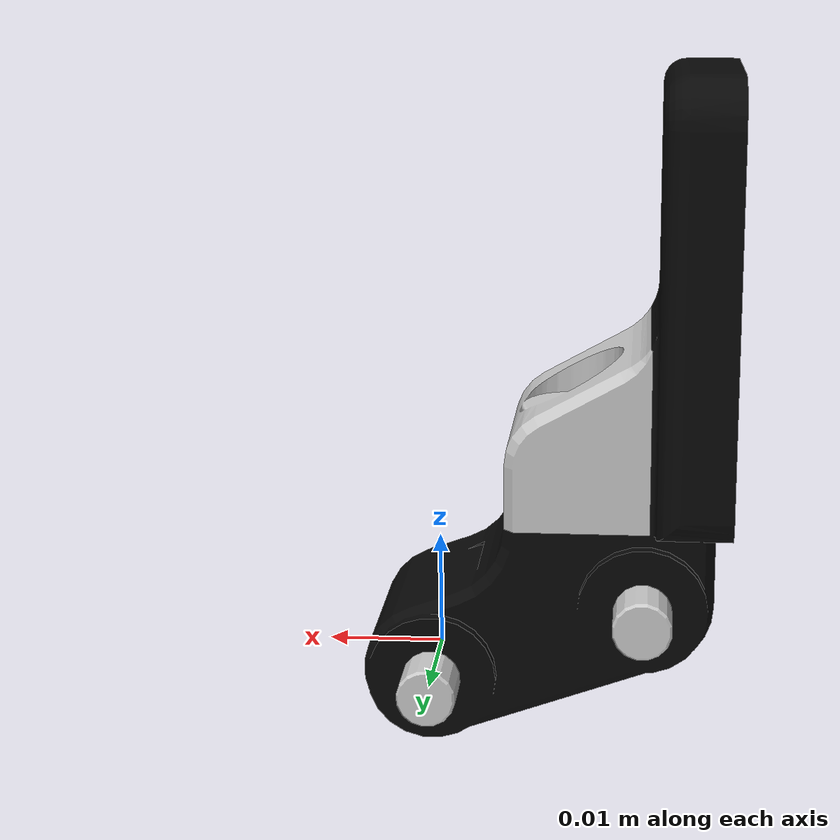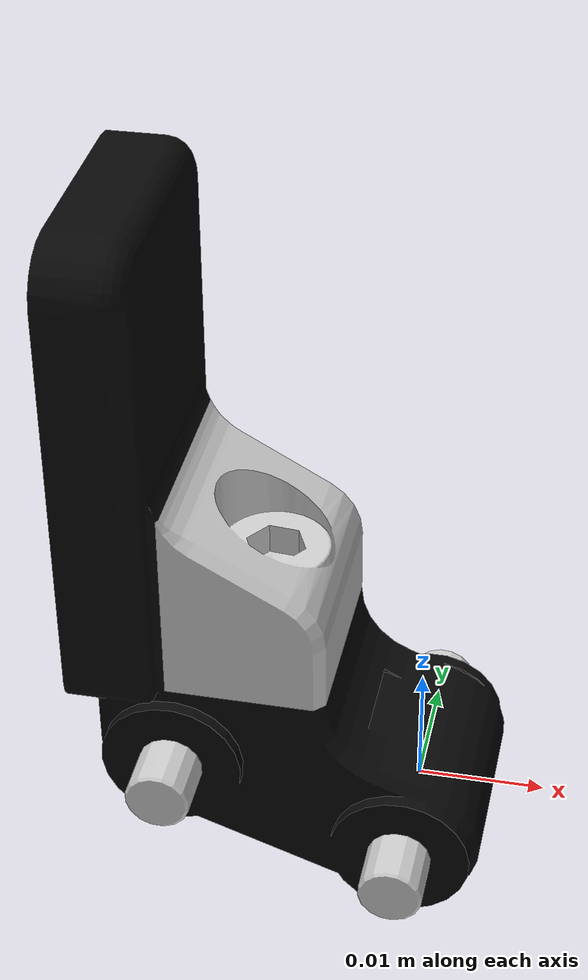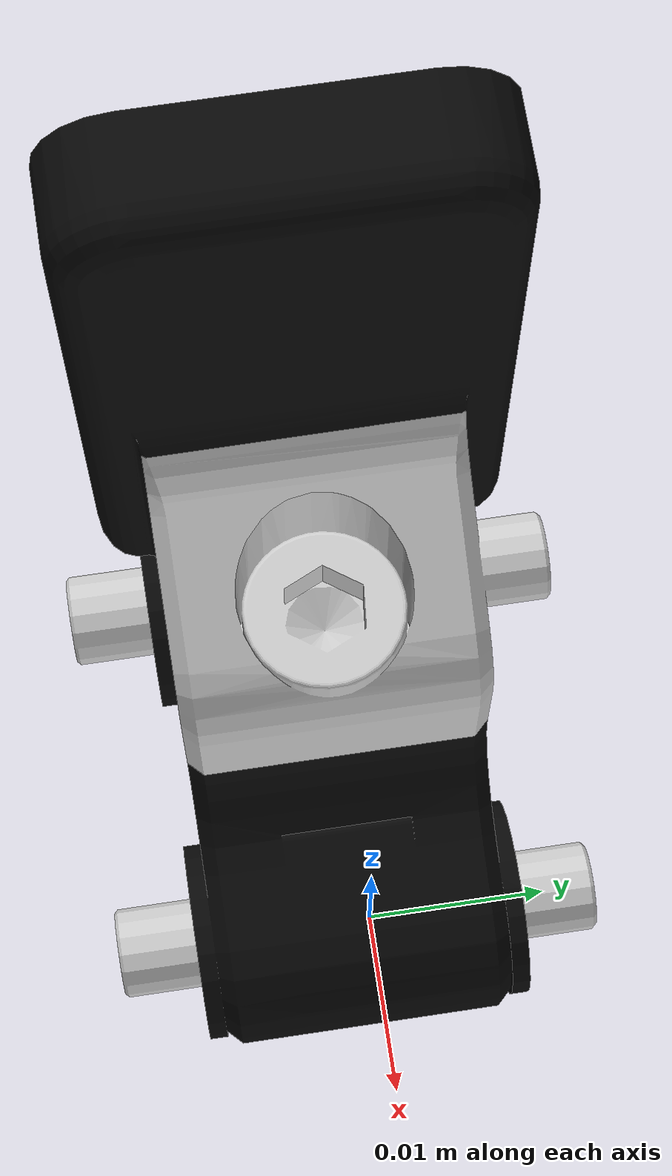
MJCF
<mujoco model="left_finger_tip">
  <default>
    <default class="visual">
      <geom group="2" type="mesh" contype="0" conaffinity="0"/>
    </default>
    <default class="collision">
      <geom group="3" type="mesh"/>
    </default>
  </default>
  <asset>
    <material name="material_left_finger_tip_0" specular="0.20000000000000004" shininess="1.0" rgba="0.03137255 0.03137255 0.03137255 1.0"/>
    <material name="material_left_finger_tip_1" specular="0.20000000000000004" shininess="1.0" rgba="0.80000000 0.80000000 0.80000000 1.0"/>
    <mesh file="left_finger_tip_0.obj"/>
    <mesh file="left_finger_tip_1.obj"/>
  </asset>
  <worldbody>
    <body name="left_finger_tip">
      <geom mesh="left_finger_tip_0" material="material_left_finger_tip_1" class="visual"/>
      <geom mesh="left_finger_tip_1" material="material_left_finger_tip_0" class="visual"/>
      <geom mesh="left_finger_tip_0" class="collision"/>
      <geom mesh="left_finger_tip_1" class="collision"/>
    </body>
  </worldbody>
</mujoco>
